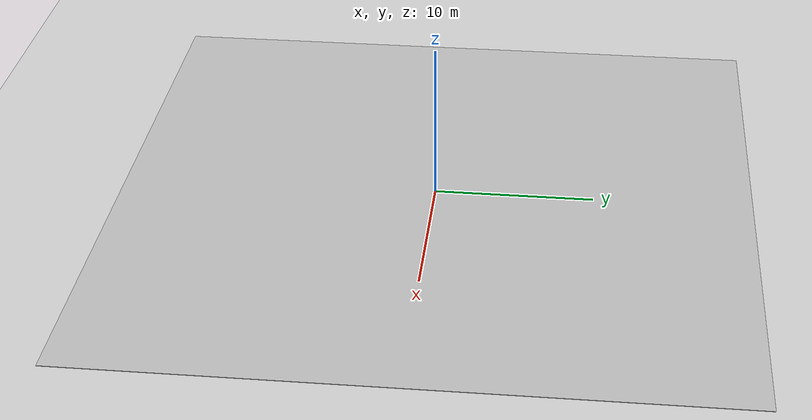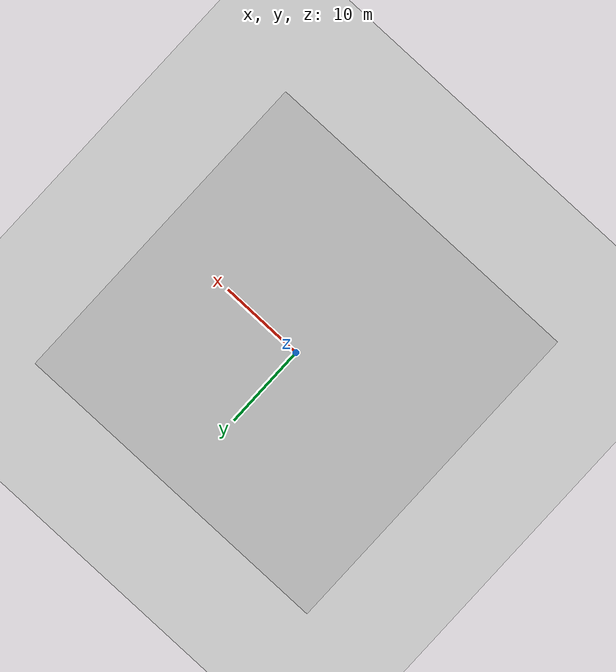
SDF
<?xml version="1.0" ?>
<sdf version="1.4">
  <world name="default">
    <include>
      <uri>model://ground_plane</uri>
    </include>
    <include>
      <uri>model://sun</uri>
    </include>
    <include>
      <uri>model://my_ground_plane</uri>
    </include>

  </world>
</sdf>

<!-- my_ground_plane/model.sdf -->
<sdf version="1.4">
<model name="my_ground_plane">
  <static>true</static>
    <link name="link">
      <collision name='collision'>
        <geometry>
          <plane>
            <normal>0 0 1</normal>
            <size>150 150</size>
          </plane>
        </geometry>
        <surface>
          <friction>
            <ode>
              <mu>100</mu>
              <mu2>100</mu2>
              <slip1>0.0</slip1>
              <slip2>0.0</slip2>
              <fdir1>0 0 0</fdir1>
            </ode>
          </friction>
          <bounce>
            <restitution_coefficient>0</restitution_coefficient>
            <threshold>1e+06</threshold>
          </bounce>
          <contact>
            <ode>
              <kp>100000000.0</kp>
              <kd>10000.0</kd>
              <max_vel>0.01</max_vel>
              <min_depth>0.0001</min_depth>
            </ode>
          </contact>
        </surface>
        <max_contacts>10</max_contacts>
      </collision>
      <visual name="visual">
        <cast_shadows>false</cast_shadows>
        <geometry>
          <plane>
            <normal>0 0 1</normal>
            <size>40 40</size>
          </plane>
        </geometry>
      </visual>
    </link>
  </model>
</sdf>
